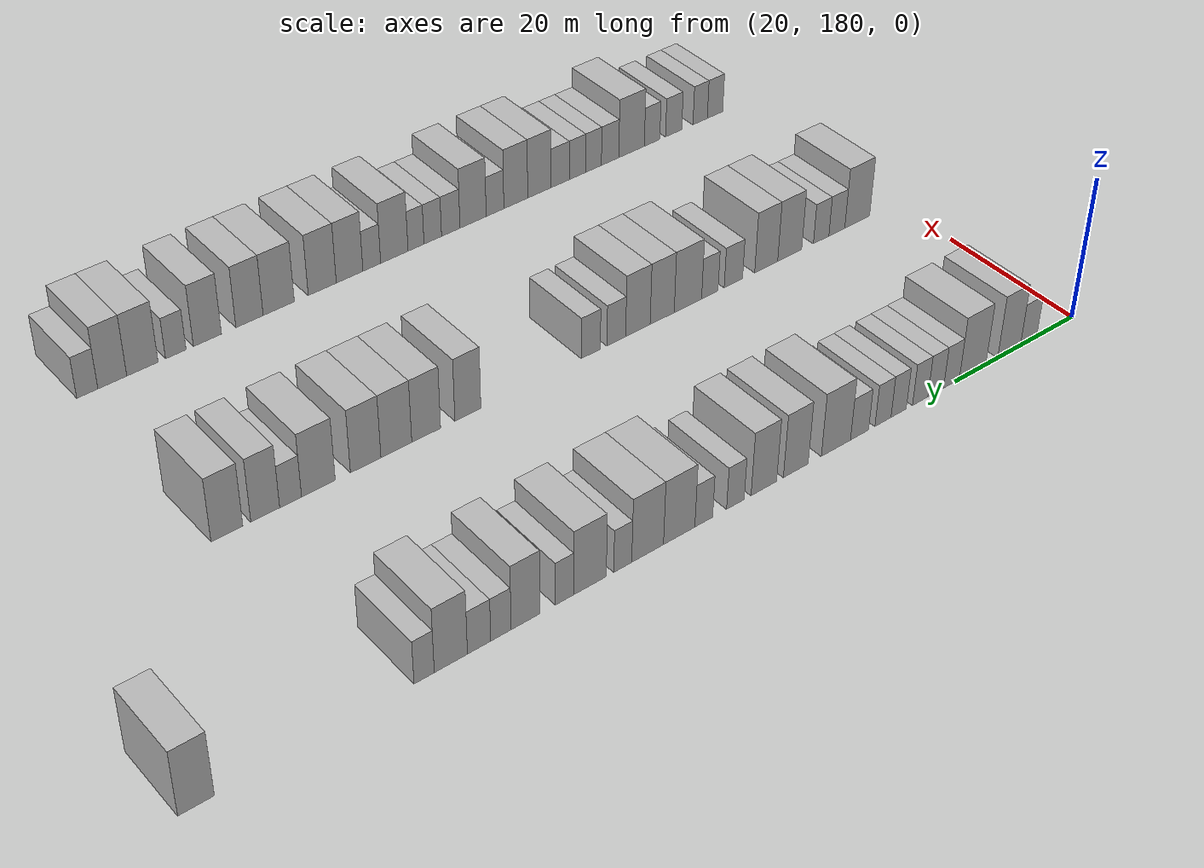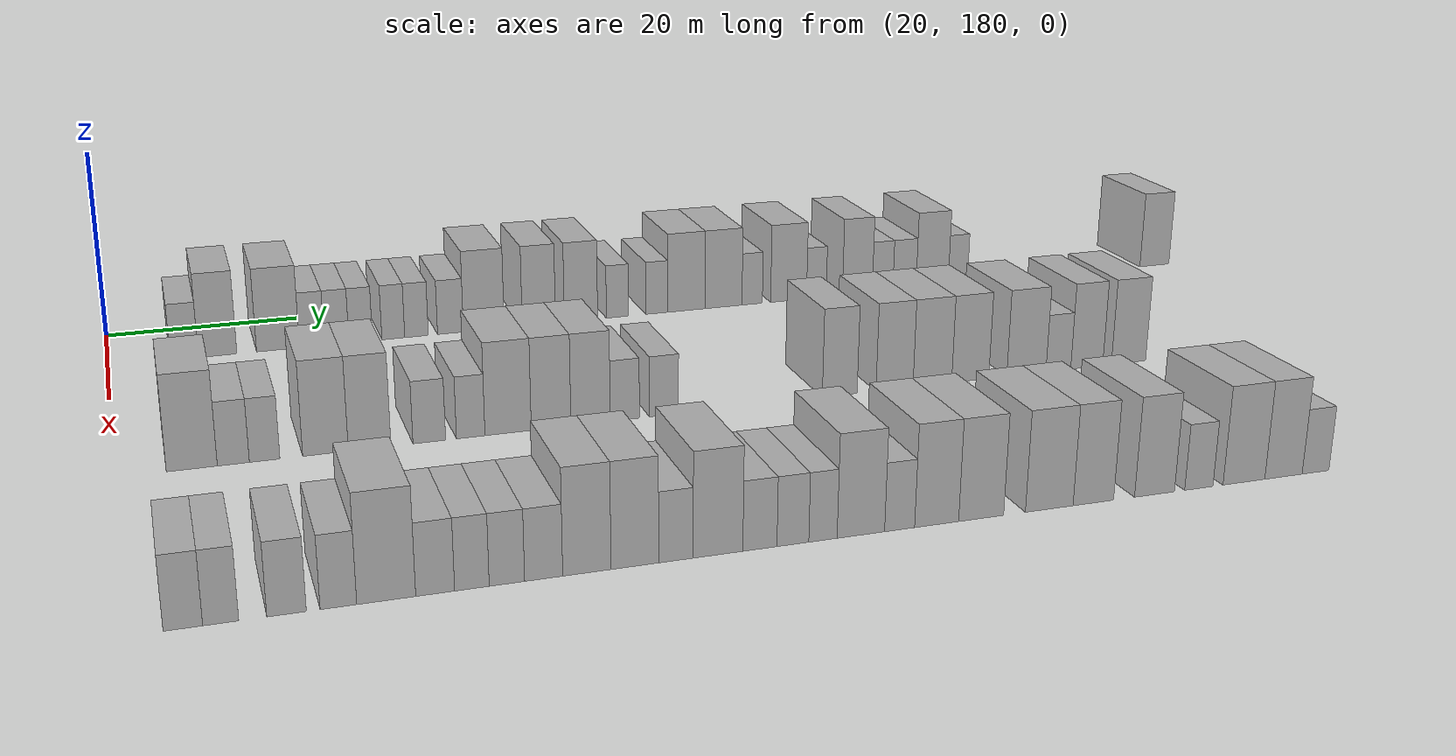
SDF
<sdf version="1.6">
 <world name="default">
  <model name="building_122">
   <static>1</static>
   <pose>25.0000 187.5481 0 0.000000 0.000000 0.000000</pose>
   <link name="link">
    <pose>0 0 3.00 0 0 0</pose>
    <collision name="collision"><geometry><box><size>10.0000 2.8034 6.0000</size></box></geometry></collision>
    <visual name="visual">
     <cast_shadows>0</cast_shadows>
     <geometry><box><size>10.0000 2.8034 6.0000</size></box></geometry>
     <material>
      <script>
       <uri>model://HANNAS_wall/materials/scripts</uri>
       <uri>model://HANNAS_wall/materials/textures</uri>
       <name>vrc/HANNAS_wall</name>
      </script>
     </material>
    </visual>
   </link>
  </model>
  <model name="building_123">
   <static>1</static>
   <pose>25.0000 190.8951 0 0.000000 0.000000 0.000000</pose>
   <link name="link">
    <pose>0 0 4.50 0 0 0</pose>
    <collision name="collision"><geometry><box><size>10.0000 3.8906 9.0000</size></box></geometry></collision>
    <visual name="visual">
     <cast_shadows>0</cast_shadows>
     <geometry><box><size>10.0000 3.8906 9.0000</size></box></geometry>
     <material>
      <script>
       <uri>model://HANNAS_wall/materials/scripts</uri>
       <uri>model://HANNAS_wall/materials/textures</uri>
       <name>vrc/HANNAS_wall</name>
      </script>
     </material>
    </visual>
   </link>
  </model>
  <model name="building_124">
   <static>1</static>
   <pose>25.0000 197.0521 0 0.000000 0.000000 0.000000</pose>
   <link name="link">
    <pose>0 0 4.50 0 0 0</pose>
    <collision name="collision"><geometry><box><size>10.0000 4.4235 9.0000</size></box></geometry></collision>
    <visual name="visual">
     <cast_shadows>0</cast_shadows>
     <geometry><box><size>10.0000 4.4235 9.0000</size></box></geometry>
     <material>
      <script>
       <uri>model://HANNAS_wall/materials/scripts</uri>
       <uri>model://HANNAS_wall/materials/textures</uri>
       <name>vrc/HANNAS_wall</name>
      </script>
     </material>
    </visual>
   </link>
  </model>
  <model name="building_125">
   <static>1</static>
   <pose>25.0000 200.5565 0 0.000000 0.000000 0.000000</pose>
   <link name="link">
    <pose>0 0 3.00 0 0 0</pose>
    <collision name="collision"><geometry><box><size>10.0000 2.5853 6.0000</size></box></geometry></collision>
    <visual name="visual">
     <cast_shadows>0</cast_shadows>
     <geometry><box><size>10.0000 2.5853 6.0000</size></box></geometry>
     <material>
      <script>
       <uri>model://HANNAS_wall/materials/scripts</uri>
       <uri>model://HANNAS_wall/materials/textures</uri>
       <name>vrc/HANNAS_wall</name>
      </script>
     </material>
    </visual>
   </link>
  </model>
  <model name="building_126">
   <static>1</static>
   <pose>25.0000 203.1362 0 0.000000 0.000000 0.000000</pose>
   <link name="link">
    <pose>0 0 3.00 0 0 0</pose>
    <collision name="collision"><geometry><box><size>10.0000 2.5741 6.0000</size></box></geometry></collision>
    <visual name="visual">
     <cast_shadows>0</cast_shadows>
     <geometry><box><size>10.0000 2.5741 6.0000</size></box></geometry>
     <material>
      <script>
       <uri>model://HANNAS_wall/materials/scripts</uri>
       <uri>model://HANNAS_wall/materials/textures</uri>
       <name>vrc/HANNAS_wall</name>
      </script>
     </material>
    </visual>
   </link>
  </model>
  <model name="building_127">
   <static>1</static>
   <pose>25.0000 205.6638 0 0.000000 0.000000 0.000000</pose>
   <link name="link">
    <pose>0 0 3.00 0 0 0</pose>
    <collision name="collision"><geometry><box><size>10.0000 2.4813 6.0000</size></box></geometry></collision>
    <visual name="visual">
     <cast_shadows>0</cast_shadows>
     <geometry><box><size>10.0000 2.4813 6.0000</size></box></geometry>
     <material>
      <script>
       <uri>model://HANNAS_wall/materials/scripts</uri>
       <uri>model://HANNAS_wall/materials/textures</uri>
       <name>vrc/HANNAS_wall</name>
      </script>
     </material>
    </visual>
   </link>
  </model>
  <model name="building_128">
   <static>1</static>
   <pose>25.0000 209.1239 0 0.000000 0.000000 0.000000</pose>
   <link name="link">
    <pose>0 0 3.00 0 0 0</pose>
    <collision name="collision"><geometry><box><size>10.0000 2.4389 6.0000</size></box></geometry></collision>
    <visual name="visual">
     <cast_shadows>0</cast_shadows>
     <geometry><box><size>10.0000 2.4389 6.0000</size></box></geometry>
     <material>
      <script>
       <uri>model://HANNAS_wall/materials/scripts</uri>
       <uri>model://HANNAS_wall/materials/textures</uri>
       <name>vrc/HANNAS_wall</name>
      </script>
     </material>
    </visual>
   </link>
  </model>
  <model name="building_129">
   <static>1</static>
   <pose>25.0000 211.6077 0 0.000000 0.000000 0.000000</pose>
   <link name="link">
    <pose>0 0 3.00 0 0 0</pose>
    <collision name="collision"><geometry><box><size>10.0000 2.5287 6.0000</size></box></geometry></collision>
    <visual name="visual">
     <cast_shadows>0</cast_shadows>
     <geometry><box><size>10.0000 2.5287 6.0000</size></box></geometry>
     <material>
      <script>
       <uri>model://HANNAS_wall/materials/scripts</uri>
       <uri>model://HANNAS_wall/materials/textures</uri>
       <name>vrc/HANNAS_wall</name>
      </script>
     </material>
    </visual>
   </link>
  </model>
  <model name="building_130">
   <static>1</static>
   <pose>25.0000 215.2789 0 0.000000 0.000000 0.000000</pose>
   <link name="link">
    <pose>0 0 3.00 0 0 0</pose>
    <collision name="collision"><geometry><box><size>10.0000 2.8137 6.0000</size></box></geometry></collision>
    <visual name="visual">
     <cast_shadows>0</cast_shadows>
     <geometry><box><size>10.0000 2.8137 6.0000</size></box></geometry>
     <material>
      <script>
       <uri>model://HANNAS_wall/materials/scripts</uri>
       <uri>model://HANNAS_wall/materials/textures</uri>
       <name>vrc/HANNAS_wall</name>
      </script>
     </material>
    </visual>
   </link>
  </model>
  <model name="building_131">
   <static>1</static>
   <pose>25.0000 218.9237 0 0.000000 0.000000 0.000000</pose>
   <link name="link">
    <pose>0 0 4.50 0 0 0</pose>
    <collision name="collision"><geometry><box><size>10.0000 4.4757 9.0000</size></box></geometry></collision>
    <visual name="visual">
     <cast_shadows>0</cast_shadows>
     <geometry><box><size>10.0000 4.4757 9.0000</size></box></geometry>
     <material>
      <script>
       <uri>model://HANNAS_wall/materials/scripts</uri>
       <uri>model://HANNAS_wall/materials/textures</uri>
       <name>vrc/HANNAS_wall</name>
      </script>
     </material>
    </visual>
   </link>
  </model>
  <model name="building_132">
   <static>1</static>
   <pose>25.0000 225.0184 0 0.000000 0.000000 0.000000</pose>
   <link name="link">
    <pose>0 0 4.50 0 0 0</pose>
    <collision name="collision"><geometry><box><size>10.0000 3.7138 9.0000</size></box></geometry></collision>
    <visual name="visual">
     <cast_shadows>0</cast_shadows>
     <geometry><box><size>10.0000 3.7138 9.0000</size></box></geometry>
     <material>
      <script>
       <uri>model://HANNAS_wall/materials/scripts</uri>
       <uri>model://HANNAS_wall/materials/textures</uri>
       <name>vrc/HANNAS_wall</name>
      </script>
     </material>
    </visual>
   </link>
  </model>
  <model name="building_133">
   <static>1</static>
   <pose>25.0000 229.7597 0 0.000000 0.000000 0.000000</pose>
   <link name="link">
    <pose>0 0 4.50 0 0 0</pose>
    <collision name="collision"><geometry><box><size>10.0000 3.7688 9.0000</size></box></geometry></collision>
    <visual name="visual">
     <cast_shadows>0</cast_shadows>
     <geometry><box><size>10.0000 3.7688 9.0000</size></box></geometry>
     <material>
      <script>
       <uri>model://HANNAS_wall/materials/scripts</uri>
       <uri>model://HANNAS_wall/materials/textures</uri>
       <name>vrc/HANNAS_wall</name>
      </script>
     </material>
    </visual>
   </link>
  </model>
  <model name="building_134">
   <static>1</static>
   <pose>25.0000 233.9187 0 0.000000 0.000000 0.000000</pose>
   <link name="link">
    <pose>0 0 3.00 0 0 0</pose>
    <collision name="collision"><geometry><box><size>10.0000 2.5491 6.0000</size></box></geometry></collision>
    <visual name="visual">
     <cast_shadows>0</cast_shadows>
     <geometry><box><size>10.0000 2.5491 6.0000</size></box></geometry>
     <material>
      <script>
       <uri>model://HANNAS_wall/materials/scripts</uri>
       <uri>model://HANNAS_wall/materials/textures</uri>
       <name>vrc/HANNAS_wall</name>
      </script>
     </material>
    </visual>
   </link>
  </model>
  <model name="building_135">
   <static>1</static>
   <pose>25.0000 238.4565 0 0.000000 0.000000 0.000000</pose>
   <link name="link">
    <pose>0 0 3.00 0 0 0</pose>
    <collision name="collision"><geometry><box><size>10.0000 2.5264 6.0000</size></box></geometry></collision>
    <visual name="visual">
     <cast_shadows>0</cast_shadows>
     <geometry><box><size>10.0000 2.5264 6.0000</size></box></geometry>
     <material>
      <script>
       <uri>model://HANNAS_wall/materials/scripts</uri>
       <uri>model://HANNAS_wall/materials/textures</uri>
       <name>vrc/HANNAS_wall</name>
      </script>
     </material>
    </visual>
   </link>
  </model>
  <model name="building_136">
   <static>1</static>
   <pose>25.0000 241.9171 0 0.000000 0.000000 0.000000</pose>
   <link name="link">
    <pose>0 0 4.50 0 0 0</pose>
    <collision name="collision"><geometry><box><size>10.0000 4.3949 9.0000</size></box></geometry></collision>
    <visual name="visual">
     <cast_shadows>0</cast_shadows>
     <geometry><box><size>10.0000 4.3949 9.0000</size></box></geometry>
     <material>
      <script>
       <uri>model://HANNAS_wall/materials/scripts</uri>
       <uri>model://HANNAS_wall/materials/textures</uri>
       <name>vrc/HANNAS_wall</name>
      </script>
     </material>
    </visual>
   </link>
  </model>
  <model name="building_137">
   <static>1</static>
   <pose>25.0000 246.3042 0 0.000000 0.000000 0.000000</pose>
   <link name="link">
    <pose>0 0 4.50 0 0 0</pose>
    <collision name="collision"><geometry><box><size>10.0000 4.3792 9.0000</size></box></geometry></collision>
    <visual name="visual">
     <cast_shadows>0</cast_shadows>
     <geometry><box><size>10.0000 4.3792 9.0000</size></box></geometry>
     <material>
      <script>
       <uri>model://HANNAS_wall/materials/scripts</uri>
       <uri>model://HANNAS_wall/materials/textures</uri>
       <name>vrc/HANNAS_wall</name>
      </script>
     </material>
    </visual>
   </link>
  </model>
  <model name="building_138">
   <static>1</static>
   <pose>25.0000 249.7152 0 0.000000 0.000000 0.000000</pose>
   <link name="link">
    <pose>0 0 3.00 0 0 0</pose>
    <collision name="collision"><geometry><box><size>10.0000 2.4429 6.0000</size></box></geometry></collision>
    <visual name="visual">
     <cast_shadows>0</cast_shadows>
     <geometry><box><size>10.0000 2.4429 6.0000</size></box></geometry>
     <material>
      <script>
       <uri>model://HANNAS_wall/materials/scripts</uri>
       <uri>model://HANNAS_wall/materials/textures</uri>
       <name>vrc/HANNAS_wall</name>
      </script>
     </material>
    </visual>
   </link>
  </model>
  <model name="building_139">
   <static>1</static>
   <pose>25.0000 254.1139 0 0.000000 0.000000 0.000000</pose>
   <link name="link">
    <pose>0 0 4.50 0 0 0</pose>
    <collision name="collision"><geometry><box><size>10.0000 4.3544 9.0000</size></box></geometry></collision>
    <visual name="visual">
     <cast_shadows>0</cast_shadows>
     <geometry><box><size>10.0000 4.3544 9.0000</size></box></geometry>
     <material>
      <script>
       <uri>model://HANNAS_wall/materials/scripts</uri>
       <uri>model://HANNAS_wall/materials/textures</uri>
       <name>vrc/HANNAS_wall</name>
      </script>
     </material>
    </visual>
   </link>
  </model>
  <model name="building_140">
   <static>1</static>
   <pose>25.0000 257.4949 0 0.000000 0.000000 0.000000</pose>
   <link name="link">
    <pose>0 0 3.00 0 0 0</pose>
    <collision name="collision"><geometry><box><size>10.0000 2.4076 6.0000</size></box></geometry></collision>
    <visual name="visual">
     <cast_shadows>0</cast_shadows>
     <geometry><box><size>10.0000 2.4076 6.0000</size></box></geometry>
     <material>
      <script>
       <uri>model://HANNAS_wall/materials/scripts</uri>
       <uri>model://HANNAS_wall/materials/textures</uri>
       <name>vrc/HANNAS_wall</name>
      </script>
     </material>
    </visual>
   </link>
  </model>
  <model name="building_141">
   <static>1</static>
   <pose>25.0000 262.5554 0 0.000000 0.000000 0.000000</pose>
   <link name="link">
    <pose>0 0 4.50 0 0 0</pose>
    <collision name="collision"><geometry><box><size>10.0000 3.7135 9.0000</size></box></geometry></collision>
    <visual name="visual">
     <cast_shadows>0</cast_shadows>
     <geometry><box><size>10.0000 3.7135 9.0000</size></box></geometry>
     <material>
      <script>
       <uri>model://HANNAS_wall/materials/scripts</uri>
       <uri>model://HANNAS_wall/materials/textures</uri>
       <name>vrc/HANNAS_wall</name>
      </script>
     </material>
    </visual>
   </link>
  </model>
  <model name="building_142">
   <static>1</static>
   <pose>25.0000 265.7044 0 0.000000 0.000000 0.000000</pose>
   <link name="link">
    <pose>0 0 3.00 0 0 0</pose>
    <collision name="collision"><geometry><box><size>10.0000 2.5844 6.0000</size></box></geometry></collision>
    <visual name="visual">
     <cast_shadows>0</cast_shadows>
     <geometry><box><size>10.0000 2.5844 6.0000</size></box></geometry>
     <material>
      <script>
       <uri>model://HANNAS_wall/materials/scripts</uri>
       <uri>model://HANNAS_wall/materials/textures</uri>
       <name>vrc/HANNAS_wall</name>
      </script>
     </material>
    </visual>
   </link>
  </model>
  <model name="building_143">
   <static>1</static>
   <pose>25.0000 268.4600 0 0.000000 0.000000 0.000000</pose>
   <link name="link">
    <pose>0 0 3.00 0 0 0</pose>
    <collision name="collision"><geometry><box><size>10.0000 2.9269 6.0000</size></box></geometry></collision>
    <visual name="visual">
     <cast_shadows>0</cast_shadows>
     <geometry><box><size>10.0000 2.9269 6.0000</size></box></geometry>
     <material>
      <script>
       <uri>model://HANNAS_wall/materials/scripts</uri>
       <uri>model://HANNAS_wall/materials/textures</uri>
       <name>vrc/HANNAS_wall</name>
      </script>
     </material>
    </visual>
   </link>
  </model>
  <model name="building_144">
   <static>1</static>
   <pose>25.0000 271.9730 0 0.000000 0.000000 0.000000</pose>
   <link name="link">
    <pose>0 0 4.50 0 0 0</pose>
    <collision name="collision"><geometry><box><size>10.0000 4.0991 9.0000</size></box></geometry></collision>
    <visual name="visual">
     <cast_shadows>0</cast_shadows>
     <geometry><box><size>10.0000 4.0991 9.0000</size></box></geometry>
     <material>
      <script>
       <uri>model://HANNAS_wall/materials/scripts</uri>
       <uri>model://HANNAS_wall/materials/textures</uri>
       <name>vrc/HANNAS_wall</name>
      </script>
     </material>
    </visual>
   </link>
  </model>
  <model name="building_145">
   <static>1</static>
   <pose>25.0000 275.2586 0 0.000000 0.000000 0.000000</pose>
   <link name="link">
    <pose>0 0 3.00 0 0 0</pose>
    <collision name="collision"><geometry><box><size>10.0000 2.4721 6.0000</size></box></geometry></collision>
    <visual name="visual">
     <cast_shadows>0</cast_shadows>
     <geometry><box><size>10.0000 2.4721 6.0000</size></box></geometry>
     <material>
      <script>
       <uri>model://HANNAS_wall/materials/scripts</uri>
       <uri>model://HANNAS_wall/materials/textures</uri>
       <name>vrc/HANNAS_wall</name>
      </script>
     </material>
    </visual>
   </link>
  </model>
  <model name="building_146">
   <static>1</static>
   <pose>25.0000 301.4821 0 0.000000 0.000000 0.000000</pose>
   <link name="link">
    <pose>0 0 4.50 0 0 0</pose>
    <collision name="collision"><geometry><box><size>10.0000 3.9916 9.0000</size></box></geometry></collision>
    <visual name="visual">
     <cast_shadows>0</cast_shadows>
     <geometry><box><size>10.0000 3.9916 9.0000</size></box></geometry>
     <material>
      <script>
       <uri>model://HANNAS_wall/materials/scripts</uri>
       <uri>model://HANNAS_wall/materials/textures</uri>
       <name>vrc/HANNAS_wall</name>
      </script>
     </material>
    </visual>
   </link>
  </model>
  <model name="building_270">
   <static>1</static>
   <pose>55.0000 186.7353 0 0.000000 0.000000 0.000000</pose>
   <link name="link">
    <pose>0 0 4.50 0 0 0</pose>
    <collision name="collision"><geometry><box><size>10.0000 4.3464 9.0000</size></box></geometry></collision>
    <visual name="visual">
     <cast_shadows>0</cast_shadows>
     <geometry><box><size>10.0000 4.3464 9.0000</size></box></geometry>
     <material>
      <script>
       <uri>model://HANNAS_wall/materials/scripts</uri>
       <uri>model://HANNAS_wall/materials/textures</uri>
       <name>vrc/HANNAS_wall</name>
      </script>
     </material>
    </visual>
   </link>
  </model>
  <model name="building_271">
   <static>1</static>
   <pose>55.0000 190.2904 0 0.000000 0.000000 0.000000</pose>
   <link name="link">
    <pose>0 0 3.00 0 0 0</pose>
    <collision name="collision"><geometry><box><size>10.0000 2.7639 6.0000</size></box></geometry></collision>
    <visual name="visual">
     <cast_shadows>0</cast_shadows>
     <geometry><box><size>10.0000 2.7639 6.0000</size></box></geometry>
     <material>
      <script>
       <uri>model://HANNAS_wall/materials/scripts</uri>
       <uri>model://HANNAS_wall/materials/textures</uri>
       <name>vrc/HANNAS_wall</name>
      </script>
     </material>
    </visual>
   </link>
  </model>
  <model name="building_272">
   <static>1</static>
   <pose>55.0000 193.0017 0 0.000000 0.000000 0.000000</pose>
   <link name="link">
    <pose>0 0 3.00 0 0 0</pose>
    <collision name="collision"><geometry><box><size>10.0000 2.6587 6.0000</size></box></geometry></collision>
    <visual name="visual">
     <cast_shadows>0</cast_shadows>
     <geometry><box><size>10.0000 2.6587 6.0000</size></box></geometry>
     <material>
      <script>
       <uri>model://HANNAS_wall/materials/scripts</uri>
       <uri>model://HANNAS_wall/materials/textures</uri>
       <name>vrc/HANNAS_wall</name>
      </script>
     </material>
    </visual>
   </link>
  </model>
  <model name="building_273">
   <static>1</static>
   <pose>55.0000 198.3556 0 0.000000 0.000000 0.000000</pose>
   <link name="link">
    <pose>0 0 4.50 0 0 0</pose>
    <collision name="collision"><geometry><box><size>10.0000 4.0489 9.0000</size></box></geometry></collision>
    <visual name="visual">
     <cast_shadows>0</cast_shadows>
     <geometry><box><size>10.0000 4.0489 9.0000</size></box></geometry>
     <material>
      <script>
       <uri>model://HANNAS_wall/materials/scripts</uri>
       <uri>model://HANNAS_wall/materials/textures</uri>
       <name>vrc/HANNAS_wall</name>
      </script>
     </material>
    </visual>
   </link>
  </model>
  <model name="building_274">
   <static>1</static>
   <pose>55.0000 202.2957 0 0.000000 0.000000 0.000000</pose>
   <link name="link">
    <pose>0 0 4.50 0 0 0</pose>
    <collision name="collision"><geometry><box><size>10.0000 3.8313 9.0000</size></box></geometry></collision>
    <visual name="visual">
     <cast_shadows>0</cast_shadows>
     <geometry><box><size>10.0000 3.8313 9.0000</size></box></geometry>
     <material>
      <script>
       <uri>model://HANNAS_wall/materials/scripts</uri>
       <uri>model://HANNAS_wall/materials/textures</uri>
       <name>vrc/HANNAS_wall</name>
      </script>
     </material>
    </visual>
   </link>
  </model>
  <model name="building_275">
   <static>1</static>
   <pose>55.0000 207.7098 0 0.000000 0.000000 0.000000</pose>
   <link name="link">
    <pose>0 0 3.00 0 0 0</pose>
    <collision name="collision"><geometry><box><size>10.0000 2.9967 6.0000</size></box></geometry></collision>
    <visual name="visual">
     <cast_shadows>0</cast_shadows>
     <geometry><box><size>10.0000 2.9967 6.0000</size></box></geometry>
     <material>
      <script>
       <uri>model://HANNAS_wall/materials/scripts</uri>
       <uri>model://HANNAS_wall/materials/textures</uri>
       <name>vrc/HANNAS_wall</name>
      </script>
     </material>
    </visual>
   </link>
  </model>
  <model name="building_276">
   <static>1</static>
   <pose>55.0000 211.5312 0 0.000000 0.000000 0.000000</pose>
   <link name="link">
    <pose>0 0 3.00 0 0 0</pose>
    <collision name="collision"><geometry><box><size>10.0000 2.6462 6.0000</size></box></geometry></collision>
    <visual name="visual">
     <cast_shadows>0</cast_shadows>
     <geometry><box><size>10.0000 2.6462 6.0000</size></box></geometry>
     <material>
      <script>
       <uri>model://HANNAS_wall/materials/scripts</uri>
       <uri>model://HANNAS_wall/materials/textures</uri>
       <name>vrc/HANNAS_wall</name>
      </script>
     </material>
    </visual>
   </link>
  </model>
  <model name="building_277">
   <static>1</static>
   <pose>55.0000 215.0335 0 0.000000 0.000000 0.000000</pose>
   <link name="link">
    <pose>0 0 4.50 0 0 0</pose>
    <collision name="collision"><geometry><box><size>10.0000 4.3585 9.0000</size></box></geometry></collision>
    <visual name="visual">
     <cast_shadows>0</cast_shadows>
     <geometry><box><size>10.0000 4.3585 9.0000</size></box></geometry>
     <material>
      <script>
       <uri>model://HANNAS_wall/materials/scripts</uri>
       <uri>model://HANNAS_wall/materials/textures</uri>
       <name>vrc/HANNAS_wall</name>
      </script>
     </material>
    </visual>
   </link>
  </model>
  <model name="building_278">
   <static>1</static>
   <pose>55.0000 219.1022 0 0.000000 0.000000 0.000000</pose>
   <link name="link">
    <pose>0 0 4.50 0 0 0</pose>
    <collision name="collision"><geometry><box><size>10.0000 3.7789 9.0000</size></box></geometry></collision>
    <visual name="visual">
     <cast_shadows>0</cast_shadows>
     <geometry><box><size>10.0000 3.7789 9.0000</size></box></geometry>
     <material>
      <script>
       <uri>model://HANNAS_wall/materials/scripts</uri>
       <uri>model://HANNAS_wall/materials/textures</uri>
       <name>vrc/HANNAS_wall</name>
      </script>
     </material>
    </visual>
   </link>
  </model>
  <model name="building_279">
   <static>1</static>
   <pose>55.0000 222.8885 0 0.000000 0.000000 0.000000</pose>
   <link name="link">
    <pose>0 0 4.50 0 0 0</pose>
    <collision name="collision"><geometry><box><size>10.0000 3.7935 9.0000</size></box></geometry></collision>
    <visual name="visual">
     <cast_shadows>0</cast_shadows>
     <geometry><box><size>10.0000 3.7935 9.0000</size></box></geometry>
     <material>
      <script>
       <uri>model://HANNAS_wall/materials/scripts</uri>
       <uri>model://HANNAS_wall/materials/textures</uri>
       <name>vrc/HANNAS_wall</name>
      </script>
     </material>
    </visual>
   </link>
  </model>
  <model name="building_280">
   <static>1</static>
   <pose>55.0000 226.2132 0 0.000000 0.000000 0.000000</pose>
   <link name="link">
    <pose>0 0 3.00 0 0 0</pose>
    <collision name="collision"><geometry><box><size>10.0000 2.8559 6.0000</size></box></geometry></collision>
    <visual name="visual">
     <cast_shadows>0</cast_shadows>
     <geometry><box><size>10.0000 2.8559 6.0000</size></box></geometry>
     <material>
      <script>
       <uri>model://HANNAS_wall/materials/scripts</uri>
       <uri>model://HANNAS_wall/materials/textures</uri>
       <name>vrc/HANNAS_wall</name>
      </script>
     </material>
    </visual>
   </link>
  </model>
  <model name="building_281">
   <static>1</static>
   <pose>55.0000 230.0713 0 0.000000 0.000000 0.000000</pose>
   <link name="link">
    <pose>0 0 3.00 0 0 0</pose>
    <collision name="collision"><geometry><box><size>10.0000 2.8604 6.0000</size></box></geometry></collision>
    <visual name="visual">
     <cast_shadows>0</cast_shadows>
     <geometry><box><size>10.0000 2.8604 6.0000</size></box></geometry>
     <material>
      <script>
       <uri>model://HANNAS_wall/materials/scripts</uri>
       <uri>model://HANNAS_wall/materials/textures</uri>
       <name>vrc/HANNAS_wall</name>
      </script>
     </material>
    </visual>
   </link>
  </model>
  <model name="building_282">
   <static>1</static>
   <pose>55.0000 247.9807 0 0.000000 0.000000 0.000000</pose>
   <link name="link">
    <pose>0 0 4.50 0 0 0</pose>
    <collision name="collision"><geometry><box><size>10.0000 3.6528 9.0000</size></box></geometry></collision>
    <visual name="visual">
     <cast_shadows>0</cast_shadows>
     <geometry><box><size>10.0000 3.6528 9.0000</size></box></geometry>
     <material>
      <script>
       <uri>model://HANNAS_wall/materials/scripts</uri>
       <uri>model://HANNAS_wall/materials/textures</uri>
       <name>vrc/HANNAS_wall</name>
      </script>
     </material>
    </visual>
   </link>
  </model>
  <model name="building_283">
   <static>1</static>
   <pose>55.0000 253.7881 0 0.000000 0.000000 0.000000</pose>
   <link name="link">
    <pose>0 0 4.50 0 0 0</pose>
    <collision name="collision"><geometry><box><size>10.0000 3.9621 9.0000</size></box></geometry></collision>
    <visual name="visual">
     <cast_shadows>0</cast_shadows>
     <geometry><box><size>10.0000 3.9621 9.0000</size></box></geometry>
     <material>
      <script>
       <uri>model://HANNAS_wall/materials/scripts</uri>
       <uri>model://HANNAS_wall/materials/textures</uri>
       <name>vrc/HANNAS_wall</name>
      </script>
     </material>
    </visual>
   </link>
  </model>
  <model name="building_284">
   <static>1</static>
   <pose>55.0000 257.8652 0 0.000000 0.000000 0.000000</pose>
   <link name="link">
    <pose>0 0 4.50 0 0 0</pose>
    <collision name="collision"><geometry><box><size>10.0000 4.1921 9.0000</size></box></geometry></collision>
    <visual name="visual">
     <cast_shadows>0</cast_shadows>
     <geometry><box><size>10.0000 4.1921 9.0000</size></box></geometry>
     <material>
      <script>
       <uri>model://HANNAS_wall/materials/scripts</uri>
       <uri>model://HANNAS_wall/materials/textures</uri>
       <name>vrc/HANNAS_wall</name>
      </script>
     </material>
    </visual>
   </link>
  </model>
  <model name="building_285">
   <static>1</static>
   <pose>55.0000 261.9987 0 0.000000 0.000000 0.000000</pose>
   <link name="link">
    <pose>0 0 4.50 0 0 0</pose>
    <collision name="collision"><geometry><box><size>10.0000 4.0751 9.0000</size></box></geometry></collision>
    <visual name="visual">
     <cast_shadows>0</cast_shadows>
     <geometry><box><size>10.0000 4.0751 9.0000</size></box></geometry>
     <material>
      <script>
       <uri>model://HANNAS_wall/materials/scripts</uri>
       <uri>model://HANNAS_wall/materials/textures</uri>
       <name>vrc/HANNAS_wall</name>
      </script>
     </material>
    </visual>
   </link>
  </model>
  <model name="building_286">
   <static>1</static>
   <pose>55.0000 268.2315 0 0.000000 0.000000 0.000000</pose>
   <link name="link">
    <pose>0 0 4.50 0 0 0</pose>
    <collision name="collision"><geometry><box><size>10.0000 4.3905 9.0000</size></box></geometry></collision>
    <visual name="visual">
     <cast_shadows>0</cast_shadows>
     <geometry><box><size>10.0000 4.3905 9.0000</size></box></geometry>
     <material>
      <script>
       <uri>model://HANNAS_wall/materials/scripts</uri>
       <uri>model://HANNAS_wall/materials/textures</uri>
       <name>vrc/HANNAS_wall</name>
      </script>
     </material>
    </visual>
   </link>
  </model>
  <model name="building_287">
   <static>1</static>
   <pose>55.0000 271.8308 0 0.000000 0.000000 0.000000</pose>
   <link name="link">
    <pose>0 0 3.00 0 0 0</pose>
    <collision name="collision"><geometry><box><size>10.0000 2.8081 6.0000</size></box></geometry></collision>
    <visual name="visual">
     <cast_shadows>0</cast_shadows>
     <geometry><box><size>10.0000 2.8081 6.0000</size></box></geometry>
     <material>
      <script>
       <uri>model://HANNAS_wall/materials/scripts</uri>
       <uri>model://HANNAS_wall/materials/textures</uri>
       <name>vrc/HANNAS_wall</name>
      </script>
     </material>
    </visual>
   </link>
  </model>
  <model name="building_288">
   <static>1</static>
   <pose>55.0000 275.0663 0 0.000000 0.000000 0.000000</pose>
   <link name="link">
    <pose>0 0 4.50 0 0 0</pose>
    <collision name="collision"><geometry><box><size>10.0000 3.6628 9.0000</size></box></geometry></collision>
    <visual name="visual">
     <cast_shadows>0</cast_shadows>
     <geometry><box><size>10.0000 3.6628 9.0000</size></box></geometry>
     <material>
      <script>
       <uri>model://HANNAS_wall/materials/scripts</uri>
       <uri>model://HANNAS_wall/materials/textures</uri>
       <name>vrc/HANNAS_wall</name>
      </script>
     </material>
    </visual>
   </link>
  </model>
  <model name="building_289">
   <static>1</static>
   <pose>55.0000 279.8825 0 0.000000 0.000000 0.000000</pose>
   <link name="link">
    <pose>0 0 4.50 0 0 0</pose>
    <collision name="collision"><geometry><box><size>10.0000 3.9697 9.0000</size></box></geometry></collision>
    <visual name="visual">
     <cast_shadows>0</cast_shadows>
     <geometry><box><size>10.0000 3.9697 9.0000</size></box></geometry>
     <material>
      <script>
       <uri>model://HANNAS_wall/materials/scripts</uri>
       <uri>model://HANNAS_wall/materials/textures</uri>
       <name>vrc/HANNAS_wall</name>
      </script>
     </material>
    </visual>
   </link>
  </model>
  <model name="building_406">
   <static>1</static>
   <pose>85.0000 184.5469 0 0.000000 0.000000 0.000000</pose>
   <link name="link">
    <pose>0 0 3.00 0 0 0</pose>
    <collision name="collision"><geometry><box><size>10.0000 2.7697 6.0000</size></box></geometry></collision>
    <visual name="visual">
     <cast_shadows>0</cast_shadows>
     <geometry><box><size>10.0000 2.7697 6.0000</size></box></geometry>
     <material>
      <script>
       <uri>model://HANNAS_wall/materials/scripts</uri>
       <uri>model://HANNAS_wall/materials/textures</uri>
       <name>vrc/HANNAS_wall</name>
      </script>
     </material>
    </visual>
   </link>
  </model>
  <model name="building_407">
   <static>1</static>
   <pose>85.0000 187.2065 0 0.000000 0.000000 0.000000</pose>
   <link name="link">
    <pose>0 0 3.00 0 0 0</pose>
    <collision name="collision"><geometry><box><size>10.0000 2.5494 6.0000</size></box></geometry></collision>
    <visual name="visual">
     <cast_shadows>0</cast_shadows>
     <geometry><box><size>10.0000 2.5494 6.0000</size></box></geometry>
     <material>
      <script>
       <uri>model://HANNAS_wall/materials/scripts</uri>
       <uri>model://HANNAS_wall/materials/textures</uri>
       <name>vrc/HANNAS_wall</name>
      </script>
     </material>
    </visual>
   </link>
  </model>
  <model name="building_408">
   <static>1</static>
   <pose>85.0000 191.9090 0 0.000000 0.000000 0.000000</pose>
   <link name="link">
    <pose>0 0 3.00 0 0 0</pose>
    <collision name="collision"><geometry><box><size>10.0000 2.8558 6.0000</size></box></geometry></collision>
    <visual name="visual">
     <cast_shadows>0</cast_shadows>
     <geometry><box><size>10.0000 2.8558 6.0000</size></box></geometry>
     <material>
      <script>
       <uri>model://HANNAS_wall/materials/scripts</uri>
       <uri>model://HANNAS_wall/materials/textures</uri>
       <name>vrc/HANNAS_wall</name>
      </script>
     </material>
    </visual>
   </link>
  </model>
  <model name="building_409">
   <static>1</static>
   <pose>85.0000 195.6797 0 0.000000 0.000000 0.000000</pose>
   <link name="link">
    <pose>0 0 3.00 0 0 0</pose>
    <collision name="collision"><geometry><box><size>10.0000 2.6855 6.0000</size></box></geometry></collision>
    <visual name="visual">
     <cast_shadows>0</cast_shadows>
     <geometry><box><size>10.0000 2.6855 6.0000</size></box></geometry>
     <material>
      <script>
       <uri>model://HANNAS_wall/materials/scripts</uri>
       <uri>model://HANNAS_wall/materials/textures</uri>
       <name>vrc/HANNAS_wall</name>
      </script>
     </material>
    </visual>
   </link>
  </model>
  <model name="building_410">
   <static>1</static>
   <pose>85.0000 199.2168 0 0.000000 0.000000 0.000000</pose>
   <link name="link">
    <pose>0 0 4.50 0 0 0</pose>
    <collision name="collision"><geometry><box><size>10.0000 4.3887 9.0000</size></box></geometry></collision>
    <visual name="visual">
     <cast_shadows>0</cast_shadows>
     <geometry><box><size>10.0000 4.3887 9.0000</size></box></geometry>
     <material>
      <script>
       <uri>model://HANNAS_wall/materials/scripts</uri>
       <uri>model://HANNAS_wall/materials/textures</uri>
       <name>vrc/HANNAS_wall</name>
      </script>
     </material>
    </visual>
   </link>
  </model>
  <model name="building_411">
   <static>1</static>
   <pose>85.0000 202.8828 0 0.000000 0.000000 0.000000</pose>
   <link name="link">
    <pose>0 0 3.00 0 0 0</pose>
    <collision name="collision"><geometry><box><size>10.0000 2.9433 6.0000</size></box></geometry></collision>
    <visual name="visual">
     <cast_shadows>0</cast_shadows>
     <geometry><box><size>10.0000 2.9433 6.0000</size></box></geometry>
     <material>
      <script>
       <uri>model://HANNAS_wall/materials/scripts</uri>
       <uri>model://HANNAS_wall/materials/textures</uri>
       <name>vrc/HANNAS_wall</name>
      </script>
     </material>
    </visual>
   </link>
  </model>
  <model name="building_412">
   <static>1</static>
   <pose>85.0000 205.6766 0 0.000000 0.000000 0.000000</pose>
   <link name="link">
    <pose>0 0 3.00 0 0 0</pose>
    <collision name="collision"><geometry><box><size>10.0000 2.6444 6.0000</size></box></geometry></collision>
    <visual name="visual">
     <cast_shadows>0</cast_shadows>
     <geometry><box><size>10.0000 2.6444 6.0000</size></box></geometry>
     <material>
      <script>
       <uri>model://HANNAS_wall/materials/scripts</uri>
       <uri>model://HANNAS_wall/materials/textures</uri>
       <name>vrc/HANNAS_wall</name>
      </script>
     </material>
    </visual>
   </link>
  </model>
  <model name="building_413">
   <static>1</static>
   <pose>85.0000 208.3701 0 0.000000 0.000000 0.000000</pose>
   <link name="link">
    <pose>0 0 3.00 0 0 0</pose>
    <collision name="collision"><geometry><box><size>10.0000 2.7426 6.0000</size></box></geometry></collision>
    <visual name="visual">
     <cast_shadows>0</cast_shadows>
     <geometry><box><size>10.0000 2.7426 6.0000</size></box></geometry>
     <material>
      <script>
       <uri>model://HANNAS_wall/materials/scripts</uri>
       <uri>model://HANNAS_wall/materials/textures</uri>
       <name>vrc/HANNAS_wall</name>
      </script>
     </material>
    </visual>
   </link>
  </model>
  <model name="building_414">
   <static>1</static>
   <pose>85.0000 211.2306 0 0.000000 0.000000 0.000000</pose>
   <link name="link">
    <pose>0 0 3.00 0 0 0</pose>
    <collision name="collision"><geometry><box><size>10.0000 2.9784 6.0000</size></box></geometry></collision>
    <visual name="visual">
     <cast_shadows>0</cast_shadows>
     <geometry><box><size>10.0000 2.9784 6.0000</size></box></geometry>
     <material>
      <script>
       <uri>model://HANNAS_wall/materials/scripts</uri>
       <uri>model://HANNAS_wall/materials/textures</uri>
       <name>vrc/HANNAS_wall</name>
      </script>
     </material>
    </visual>
   </link>
  </model>
  <model name="building_415">
   <static>1</static>
   <pose>85.0000 214.6373 0 0.000000 0.000000 0.000000</pose>
   <link name="link">
    <pose>0 0 4.50 0 0 0</pose>
    <collision name="collision"><geometry><box><size>10.0000 3.8350 9.0000</size></box></geometry></collision>
    <visual name="visual">
     <cast_shadows>0</cast_shadows>
     <geometry><box><size>10.0000 3.8350 9.0000</size></box></geometry>
     <material>
      <script>
       <uri>model://HANNAS_wall/materials/scripts</uri>
       <uri>model://HANNAS_wall/materials/textures</uri>
       <name>vrc/HANNAS_wall</name>
      </script>
     </material>
    </visual>
   </link>
  </model>
  <model name="building_416">
   <static>1</static>
   <pose>85.0000 218.4761 0 0.000000 0.000000 0.000000</pose>
   <link name="link">
    <pose>0 0 4.50 0 0 0</pose>
    <collision name="collision"><geometry><box><size>10.0000 3.8427 9.0000</size></box></geometry></collision>
    <visual name="visual">
     <cast_shadows>0</cast_shadows>
     <geometry><box><size>10.0000 3.8427 9.0000</size></box></geometry>
     <material>
      <script>
       <uri>model://HANNAS_wall/materials/scripts</uri>
       <uri>model://HANNAS_wall/materials/textures</uri>
       <name>vrc/HANNAS_wall</name>
      </script>
     </material>
    </visual>
   </link>
  </model>
  <model name="building_417">
   <static>1</static>
   <pose>85.0000 221.8064 0 0.000000 0.000000 0.000000</pose>
   <link name="link">
    <pose>0 0 3.00 0 0 0</pose>
    <collision name="collision"><geometry><box><size>10.0000 2.8179 6.0000</size></box></geometry></collision>
    <visual name="visual">
     <cast_shadows>0</cast_shadows>
     <geometry><box><size>10.0000 2.8179 6.0000</size></box></geometry>
     <material>
      <script>
       <uri>model://HANNAS_wall/materials/scripts</uri>
       <uri>model://HANNAS_wall/materials/textures</uri>
       <name>vrc/HANNAS_wall</name>
      </script>
     </material>
    </visual>
   </link>
  </model>
  <model name="building_418">
   <static>1</static>
   <pose>85.0000 225.2785 0 0.000000 0.000000 0.000000</pose>
   <link name="link">
    <pose>0 0 4.50 0 0 0</pose>
    <collision name="collision"><geometry><box><size>10.0000 4.1263 9.0000</size></box></geometry></collision>
    <visual name="visual">
     <cast_shadows>0</cast_shadows>
     <geometry><box><size>10.0000 4.1263 9.0000</size></box></geometry>
     <material>
      <script>
       <uri>model://HANNAS_wall/materials/scripts</uri>
       <uri>model://HANNAS_wall/materials/textures</uri>
       <name>vrc/HANNAS_wall</name>
      </script>
     </material>
    </visual>
   </link>
  </model>
  <model name="building_419">
   <static>1</static>
   <pose>85.0000 228.7763 0 0.000000 0.000000 0.000000</pose>
   <link name="link">
    <pose>0 0 3.00 0 0 0</pose>
    <collision name="collision"><geometry><box><size>10.0000 2.8693 6.0000</size></box></geometry></collision>
    <visual name="visual">
     <cast_shadows>0</cast_shadows>
     <geometry><box><size>10.0000 2.8693 6.0000</size></box></geometry>
     <material>
      <script>
       <uri>model://HANNAS_wall/materials/scripts</uri>
       <uri>model://HANNAS_wall/materials/textures</uri>
       <name>vrc/HANNAS_wall</name>
      </script>
     </material>
    </visual>
   </link>
  </model>
  <model name="building_420">
   <static>1</static>
   <pose>85.0000 231.5644 0 0.000000 0.000000 0.000000</pose>
   <link name="link">
    <pose>0 0 3.00 0 0 0</pose>
    <collision name="collision"><geometry><box><size>10.0000 2.7069 6.0000</size></box></geometry></collision>
    <visual name="visual">
     <cast_shadows>0</cast_shadows>
     <geometry><box><size>10.0000 2.7069 6.0000</size></box></geometry>
     <material>
      <script>
       <uri>model://HANNAS_wall/materials/scripts</uri>
       <uri>model://HANNAS_wall/materials/textures</uri>
       <name>vrc/HANNAS_wall</name>
      </script>
     </material>
    </visual>
   </link>
  </model>
  <model name="building_421">
   <static>1</static>
   <pose>85.0000 234.1348 0 0.000000 0.000000 0.000000</pose>
   <link name="link">
    <pose>0 0 3.00 0 0 0</pose>
    <collision name="collision"><geometry><box><size>10.0000 2.4340 6.0000</size></box></geometry></collision>
    <visual name="visual">
     <cast_shadows>0</cast_shadows>
     <geometry><box><size>10.0000 2.4340 6.0000</size></box></geometry>
     <material>
      <script>
       <uri>model://HANNAS_wall/materials/scripts</uri>
       <uri>model://HANNAS_wall/materials/textures</uri>
       <name>vrc/HANNAS_wall</name>
      </script>
     </material>
    </visual>
   </link>
  </model>
  <model name="building_422">
   <static>1</static>
   <pose>85.0000 237.4198 0 0.000000 0.000000 0.000000</pose>
   <link name="link">
    <pose>0 0 4.50 0 0 0</pose>
    <collision name="collision"><geometry><box><size>10.0000 4.1359 9.0000</size></box></geometry></collision>
    <visual name="visual">
     <cast_shadows>0</cast_shadows>
     <geometry><box><size>10.0000 4.1359 9.0000</size></box></geometry>
     <material>
      <script>
       <uri>model://HANNAS_wall/materials/scripts</uri>
       <uri>model://HANNAS_wall/materials/textures</uri>
       <name>vrc/HANNAS_wall</name>
      </script>
     </material>
    </visual>
   </link>
  </model>
  <model name="building_423">
   <static>1</static>
   <pose>85.0000 240.8119 0 0.000000 0.000000 0.000000</pose>
   <link name="link">
    <pose>0 0 3.00 0 0 0</pose>
    <collision name="collision"><geometry><box><size>10.0000 2.6484 6.0000</size></box></geometry></collision>
    <visual name="visual">
     <cast_shadows>0</cast_shadows>
     <geometry><box><size>10.0000 2.6484 6.0000</size></box></geometry>
     <material>
      <script>
       <uri>model://HANNAS_wall/materials/scripts</uri>
       <uri>model://HANNAS_wall/materials/textures</uri>
       <name>vrc/HANNAS_wall</name>
      </script>
     </material>
    </visual>
   </link>
  </model>
  <model name="building_424">
   <static>1</static>
   <pose>85.0000 244.1033 0 0.000000 0.000000 0.000000</pose>
   <link name="link">
    <pose>0 0 4.50 0 0 0</pose>
    <collision name="collision"><geometry><box><size>10.0000 3.9345 9.0000</size></box></geometry></collision>
    <visual name="visual">
     <cast_shadows>0</cast_shadows>
     <geometry><box><size>10.0000 3.9345 9.0000</size></box></geometry>
     <material>
      <script>
       <uri>model://HANNAS_wall/materials/scripts</uri>
       <uri>model://HANNAS_wall/materials/textures</uri>
       <name>vrc/HANNAS_wall</name>
      </script>
     </material>
    </visual>
   </link>
  </model>
  <model name="building_425">
   <static>1</static>
   <pose>85.0000 248.1138 0 0.000000 0.000000 0.000000</pose>
   <link name="link">
    <pose>0 0 4.50 0 0 0</pose>
    <collision name="collision"><geometry><box><size>10.0000 4.0865 9.0000</size></box></geometry></collision>
    <visual name="visual">
     <cast_shadows>0</cast_shadows>
     <geometry><box><size>10.0000 4.0865 9.0000</size></box></geometry>
     <material>
      <script>
       <uri>model://HANNAS_wall/materials/scripts</uri>
       <uri>model://HANNAS_wall/materials/textures</uri>
       <name>vrc/HANNAS_wall</name>
      </script>
     </material>
    </visual>
   </link>
  </model>
  <model name="building_426">
   <static>1</static>
   <pose>85.0000 254.3718 0 0.000000 0.000000 0.000000</pose>
   <link name="link">
    <pose>0 0 4.50 0 0 0</pose>
    <collision name="collision"><geometry><box><size>10.0000 4.4295 9.0000</size></box></geometry></collision>
    <visual name="visual">
     <cast_shadows>0</cast_shadows>
     <geometry><box><size>10.0000 4.4295 9.0000</size></box></geometry>
     <material>
      <script>
       <uri>model://HANNAS_wall/materials/scripts</uri>
       <uri>model://HANNAS_wall/materials/textures</uri>
       <name>vrc/HANNAS_wall</name>
      </script>
     </material>
    </visual>
   </link>
  </model>
  <model name="building_427">
   <static>1</static>
   <pose>85.0000 258.5018 0 0.000000 0.000000 0.000000</pose>
   <link name="link">
    <pose>0 0 4.50 0 0 0</pose>
    <collision name="collision"><geometry><box><size>10.0000 3.8304 9.0000</size></box></geometry></collision>
    <visual name="visual">
     <cast_shadows>0</cast_shadows>
     <geometry><box><size>10.0000 3.8304 9.0000</size></box></geometry>
     <material>
      <script>
       <uri>model://HANNAS_wall/materials/scripts</uri>
       <uri>model://HANNAS_wall/materials/textures</uri>
       <name>vrc/HANNAS_wall</name>
      </script>
     </material>
    </visual>
   </link>
  </model>
  <model name="building_428">
   <static>1</static>
   <pose>85.0000 264.3425 0 0.000000 0.000000 0.000000</pose>
   <link name="link">
    <pose>0 0 4.50 0 0 0</pose>
    <collision name="collision"><geometry><box><size>10.0000 3.8511 9.0000</size></box></geometry></collision>
    <visual name="visual">
     <cast_shadows>0</cast_shadows>
     <geometry><box><size>10.0000 3.8511 9.0000</size></box></geometry>
     <material>
      <script>
       <uri>model://HANNAS_wall/materials/scripts</uri>
       <uri>model://HANNAS_wall/materials/textures</uri>
       <name>vrc/HANNAS_wall</name>
      </script>
     </material>
    </visual>
   </link>
  </model>
  <model name="building_429">
   <static>1</static>
   <pose>85.0000 268.6536 0 0.000000 0.000000 0.000000</pose>
   <link name="link">
    <pose>0 0 3.00 0 0 0</pose>
    <collision name="collision"><geometry><box><size>10.0000 2.7712 6.0000</size></box></geometry></collision>
    <visual name="visual">
     <cast_shadows>0</cast_shadows>
     <geometry><box><size>10.0000 2.7712 6.0000</size></box></geometry>
     <material>
      <script>
       <uri>model://HANNAS_wall/materials/scripts</uri>
       <uri>model://HANNAS_wall/materials/textures</uri>
       <name>vrc/HANNAS_wall</name>
      </script>
     </material>
    </visual>
   </link>
  </model>
  <model name="building_430">
   <static>1</static>
   <pose>85.0000 273.1223 0 0.000000 0.000000 0.000000</pose>
   <link name="link">
    <pose>0 0 4.50 0 0 0</pose>
    <collision name="collision"><geometry><box><size>10.0000 4.1662 9.0000</size></box></geometry></collision>
    <visual name="visual">
     <cast_shadows>0</cast_shadows>
     <geometry><box><size>10.0000 4.1662 9.0000</size></box></geometry>
     <material>
      <script>
       <uri>model://HANNAS_wall/materials/scripts</uri>
       <uri>model://HANNAS_wall/materials/textures</uri>
       <name>vrc/HANNAS_wall</name>
      </script>
     </material>
    </visual>
   </link>
  </model>
  <model name="building_431">
   <static>1</static>
   <pose>85.0000 277.0968 0 0.000000 0.000000 0.000000</pose>
   <link name="link">
    <pose>0 0 4.50 0 0 0</pose>
    <collision name="collision"><geometry><box><size>10.0000 3.7828 9.0000</size></box></geometry></collision>
    <visual name="visual">
     <cast_shadows>0</cast_shadows>
     <geometry><box><size>10.0000 3.7828 9.0000</size></box></geometry>
     <material>
      <script>
       <uri>model://HANNAS_wall/materials/scripts</uri>
       <uri>model://HANNAS_wall/materials/textures</uri>
       <name>vrc/HANNAS_wall</name>
      </script>
     </material>
    </visual>
   </link>
  </model>
  <model name="building_432">
   <static>1</static>
   <pose>85.0000 280.3569 0 0.000000 0.000000 0.000000</pose>
   <link name="link">
    <pose>0 0 3.00 0 0 0</pose>
    <collision name="collision"><geometry><box><size>10.0000 2.7374 6.0000</size></box></geometry></collision>
    <visual name="visual">
     <cast_shadows>0</cast_shadows>
     <geometry><box><size>10.0000 2.7374 6.0000</size></box></geometry>
     <material>
      <script>
       <uri>model://HANNAS_wall/materials/scripts</uri>
       <uri>model://HANNAS_wall/materials/textures</uri>
       <name>vrc/HANNAS_wall</name>
      </script>
     </material>
    </visual>
   </link>
  </model>
 </world>
</sdf>
